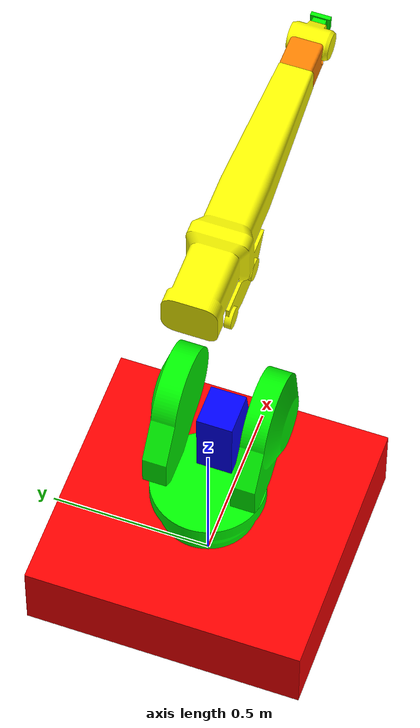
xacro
<?xml version="1.0"?>
<robot name="irb1410_1" xmlns:xacro="http://www.ros.org/wiki/xacro">

  <!-- MATERIALS -->
  <material name="red"><color rgba="1 0 0 1"/></material>
  <material name="blue"><color rgba="0 0 1 1"/></material>
  <material name="green"><color rgba="0 1 0 1"/></material>
  <material name="yellow"><color rgba="1 1 0 1"/></material>
  <material name="grey"><color rgba="0.5 0.5 0.5 1.0"/></material>
  <material name="orange"><color rgba="1.0 0.5 0.0 1.0"/></material>

  <!--############### WORLD LINK ###############-->
  <link name="world"/>

  <!--############### ROBOT-FIXED-BASE LINK ###############-->
  <link name="robot_base" >
    <visual>
        <geometry>
            <box size="0.82 0.86 0.235"/>
        </geometry>
        <origin xyz="0 0 0.1175" rpy="0 0 0" />
        <material name="red"/>
    </visual>

    <collision>
        <visual>
            <geometry>
                <box size="0.82 0.86 0.235"/>
            </geometry>
        <origin xyz="0 0 0.1175" rpy="0 0 0" />
        <material name="red"/>
        </visual>
    </collision>
  </link>

  <!--############### ROBOT-JOINT-1 BASE LINK ###############-->
  <link name="link_1" >
        <visual>
            <geometry>
                <mesh filename="package://irb_1410_new/meshes/Base.stl"
                      scale="0.001 0.001 0.001"/>
            </geometry>
            <origin xyz="0.15 0 1" rpy="0 0 1.57" />
            <material name="green"/>
        </visual>

        <collision>
            <geometry>
                <mesh filename="package://irb_1410_new/meshes/Base.stl"
                      scale="0.001 0.001 0.01"/>
            </geometry>
            <origin xyz="0.15 0 1" rpy="0 0 1.57" />
        </collision>
    </link>

    <!--############### ROBOT-JOINT-2 LINK ###############-->
    <link name="link_2" >
        <visual>
            <geometry>
                <mesh filename="package://irb_1410_new/meshes/Arm_1.stl"
                      scale="0.00085 0.0007 0.001"/>
            </geometry>
            <origin xyz="0 0 0" rpy="0 0 1.57" />
            <material name="blue"/>
        </visual>

        <collision>
            <geometry>
                <mesh filename="package://irb_1410_new/meshes/Arm_1.stl"
                      scale="0.00085 0.0007 0.001"/>
            </geometry>
            <origin xyz="0 0 0" rpy="0 0 1.57" />
        </collision>
    </link>

    <!--   ############### ROBOT ARM 3 LINK ###############  -->
    <link name="link_3" >
        <visual>
            <geometry>
                <mesh filename="package://irb_1410_new/meshes/Arm_2.stl"
                      scale="0.001 0.001 0.001"/>
            </geometry>
            <origin xyz="0 0 0.11" rpy="0 0 1.57" />
            <material name="yellow"/>
        </visual>

        <collision>
            <geometry>
                <mesh filename="package://irb_1410_new/meshes/Arm_2.stl"
                      scale="0.001 0.001 0.001"/>
            </geometry>
            <origin xyz="0 0 0.11" rpy="0 0 1.57" />
        </collision>
    </link>

    <!--   ############### ROBOT LINK 4 ###############  -->
    <link name="link_4" >
        <visual>
            <geometry>
                <mesh filename="package://irb_1410_new/meshes/Wrist.stl"
                      scale="0.001 0.001 0.001"/>
            </geometry>
            <origin xyz="0 0.004 -0.01" rpy="0 0 1.57" />
            <material name="orange"/>
        </visual>

        <collision>
            <geometry>
                <mesh filename="package://irb_1410_new/meshes/Wrist.stl"
                      scale="0.001 0.001 0.001"/>
            </geometry>
            <origin xyz="0 0.004 -0.01" rpy="0 0 1.57" />
        </collision>
    </link>

    <!--   ############### ROBOT LINK 5  ############### -->
    <link name="link_5" >
        <visual>
            <geometry>
                <mesh filename="package://irb_1410_new/meshes/End_wrist.stl"
                      scale="0.001 0.001 0.001"/>
            </geometry>
            <origin xyz="-0.713 0 0" rpy="0 0 1.57" />
            <material name="yellow"/>
        </visual>

        <collision>
            <geometry>
                <mesh filename="package://irb_1410_new/meshes/End_wrist.stl"
                      scale="0.001 0.001 0.001"/>
            </geometry>
            <origin xyz="-0.713 0 0" rpy="0 0 1.57" />
        </collision>
    </link>

    <!--   ############### ROBOT LINK 6 ###############  -->
    <link name="link_6" >
        <visual>
            <geometry>
                <mesh filename="package://irb_1410_new/meshes/END.stl"
                      scale="0.001 0.001 0.001"/>
            </geometry>
            <origin xyz="-0.798 0 0" rpy="0 0 1.57" />
            <material name="green"/>
        </visual>

        <collision>
             <geometry>
                <mesh filename="package://irb_1410_new/meshes/END.stl"
                      scale="0.001 0.001 0.001"/>
            </geometry>
            <origin xyz="-0.798 0 0" rpy="0 0 1.57" />
        </collision>
    </link>

  <!-- WORDL-ROBOT-FIXED-BASED JOINT-->
  <joint name="world_to_base" type="fixed">
        <parent link="world"/>
        <child link="robot_base"/>
        <origin xyz="0 0 0" rpy="0 0 0"/>
  </joint>

  <!-- ROBOT-LINK-1_-_ROBOT-FIXED JOINT-->
   <joint name="=joint1" type="revolute">
        <parent link="robot_base"/>
        <child link="link_1"/>
        <origin xyz="0 0 0.235" rpy="0 0 0"/>
        <axis xyz="0 0 1"/>
        <limit lower="-2.96706" upper="2.96706" effort="10" velocity="1"/>
    </joint>

  <!-- ROBOT-LINK-2_-_ROBOT-LINK-1 JOINT-->
   <joint name="joint2" type="revolute">
        <parent link="link_1"/>
        <child link="link_2"/>
        <origin xyz="0.150 0 0.475" rpy="0 0 0"/>
        <axis xyz="0 1 0"/>
        <limit lower="-2.96706" upper="2.96706" effort="10" velocity="1"/>
    </joint>

    <!-- ROBOT-LINK-3_-_ROBOT-LINK-2 JOINT-->
    <joint name="joint3" type="revolute">
        <parent link="link_2"/>
        <child link="link_3"/>
        <origin xyz="0 0 0.6" rpy="0 0 0"/>
        <axis xyz="0 1 0"/>
        <limit lower="-2.96706" upper="2.96706" effort="10" velocity="1"/>
    </joint>

    <!-- ROBOT-LINK-4_-_ROBOT-LINK-3 JOINT-->
    <joint name="joint4" type="revolute">
        <parent link="link_3"/>
        <child link="link_4"/>
        <origin xyz="0 0 0.120" rpy="0 0 0"/>
        <axis xyz="1 0 0"/>
        <limit lower="-2.96706" upper="2.96706" effort="10" velocity="1"/>
    </joint>

    <!-- ROBOT-LINK-5_-_ROBOT-LINK-4 JOINT-->
    <joint name="joint5" type="revolute">
        <parent link="link_4"/>
        <child link="link_5"/>
        <origin xyz="0.720 0 0" rpy="0 0 0"/>
        <axis xyz="0 1 0"/>
        <limit lower="-2.96706" upper="2.96706" effort="10" velocity="1"/>
    </joint>

    <!-- ROBOT-LINK-6_-_ROBOT-LINK-5 JOINT-->
    <joint name="joint6" type="revolute">
        <parent link="link_5"/>
        <child link="link_6"/>
        <origin xyz="0.085 0 0" rpy="0 0 0"/>
        <axis xyz="1 0 0"/>
        <limit lower="-2.96706" upper="2.96706" effort="10" velocity="1"/>
    </joint>

</robot>
